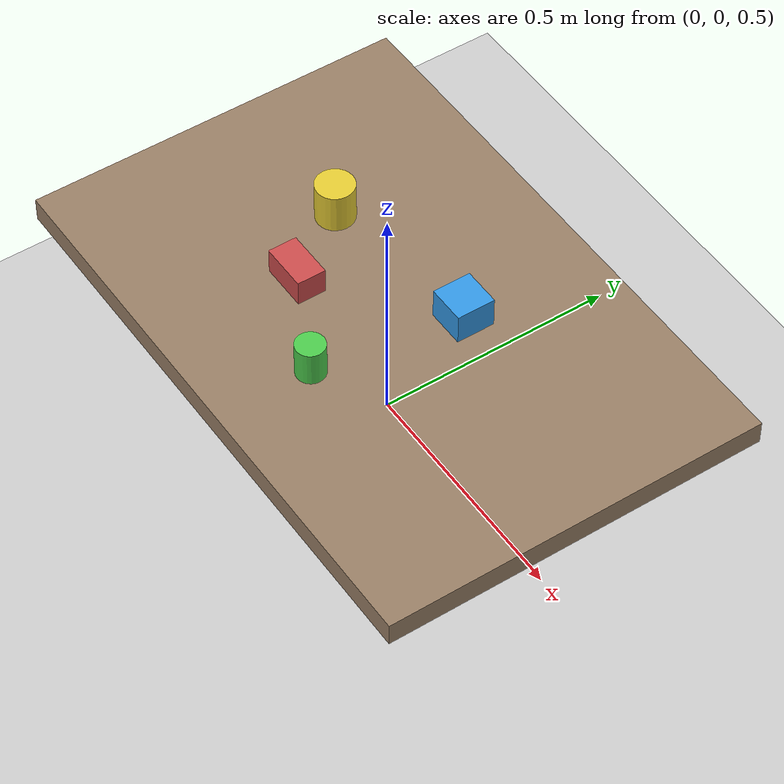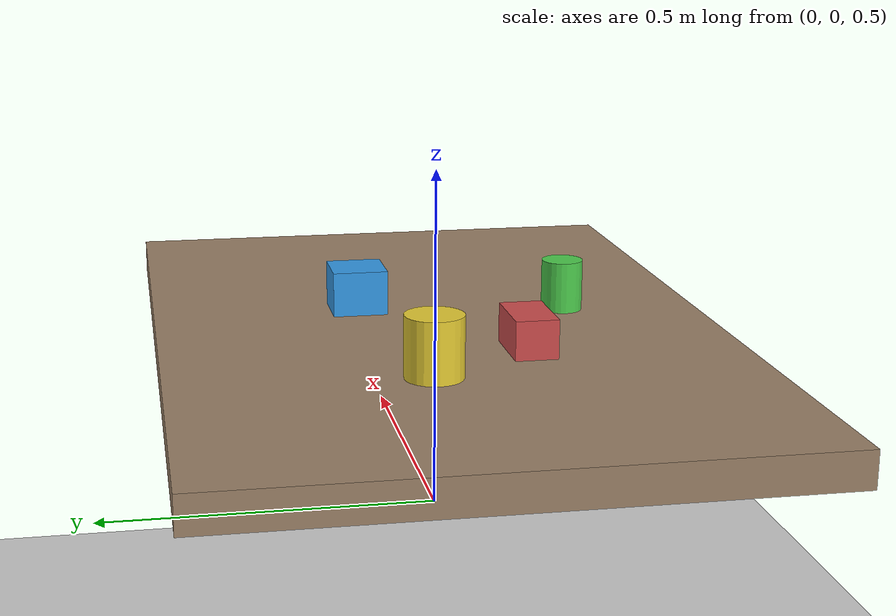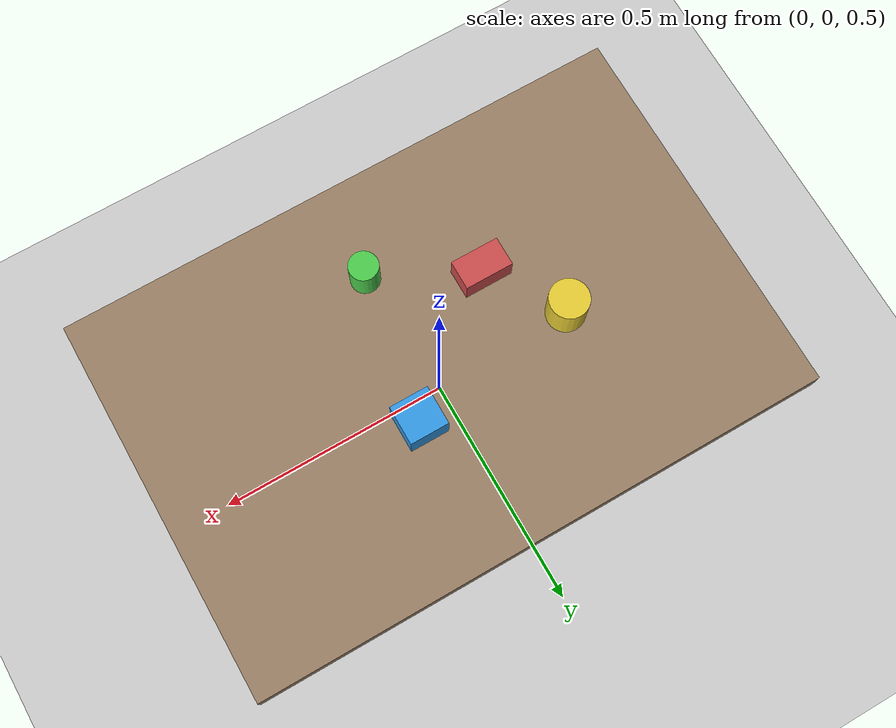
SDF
<sdf version="1.8">
 <world name="mesa_agarre_rgbd">
  <gravity>0 0 -9.81</gravity>
  <scene><ambient>0.4 0.4 0.4 1</ambient><background>0.7 0.7 0.7 1</background><shadows>true</shadows></scene>
  <include><uri>model://sun</uri></include>
  <include><uri>model://ground_plane</uri></include>
  <model name="mesa">
   <static>true</static>
   <pose>0 0 0.75 0 0 0</pose>
   <link name="mesa_link">
    <collision name="mesa_collision"><geometry><box><size>1.2 0.8 0.05</size></box></geometry></collision>
    <visual name="mesa_visual">
     <geometry><box><size>1.2 0.8 0.05</size></box></geometry>
     <material><ambient>0.6 0.5 0.4 1</ambient><diffuse>0.6 0.5 0.4 1</diffuse></material>
    </visual>
   </link>
  </model>
  <model name="obj_box_1">
   <static>false</static>
   <pose>0.10 0.10 0.80 0 0 0</pose>
   <link name="link">
    <inertial><mass>0.2</mass></inertial>
    <collision name="collision"><geometry><box><size>0.08 0.08 0.08</size></box></geometry></collision>
    <visual name="visual">
     <geometry><box><size>0.08 0.08 0.08</size></box></geometry>
     <material><diffuse>0.2 0.6 0.9 1</diffuse></material>
    </visual>
   </link>
  </model>
  <model name="obj_box_2">
   <static>false</static>
   <pose>-0.15 -0.10 0.80 0 0 0</pose>
   <link name="link">
    <inertial><mass>0.2</mass></inertial>
    <collision name="collision"><geometry><box><size>0.10 0.06 0.06</size></box></geometry></collision>
    <visual name="visual">
     <geometry><box><size>0.10 0.06 0.06</size></box></geometry>
     <material><diffuse>0.8 0.3 0.3 1</diffuse></material>
    </visual>
   </link>
  </model>
  <model name="obj_cyl_1">
   <static>false</static>
   <pose>0.05 -0.20 0.80 0 0 0</pose>
   <link name="link">
    <inertial><mass>0.15</mass></inertial>
    <collision name="collision">
     <geometry><cylinder><radius>0.03</radius><length>0.10</length></cylinder></geometry>
    </collision>
    <visual name="visual">
     <geometry><cylinder><radius>0.03</radius><length>0.10</length></cylinder></geometry>
     <material><diffuse>0.3 0.8 0.3 1</diffuse></material>
    </visual>
   </link>
  </model>
  <model name="obj_cyl_2">
   <static>false</static>
   <pose>-0.25 0.05 0.80 0 0 0</pose>
   <link name="link">
    <inertial><mass>0.15</mass></inertial>
    <collision name="collision">
     <geometry><cylinder><radius>0.04</radius><length>0.12</length></cylinder></geometry>
    </collision>
    <visual name="visual">
     <geometry><cylinder><radius>0.04</radius><length>0.12</length></cylinder></geometry>
     <material><diffuse>0.9 0.8 0.2 1</diffuse></material>
    </visual>
   </link>
  </model>
  <model name="rgbd_cam_1">
   <static>true</static>
   <pose>0.6 0 1.3 0 -1.0 -1.57</pose>
   <link name="link">
    <sensor name="rgbd_sensor_1" type="rgbd_camera">
     <update_rate>15.0</update_rate>
     <always_on>true</always_on>
     <visualize>true</visualize>
     <camera>
      <horizontal_fov>1.047</horizontal_fov>
      <image><width>640</width><height>480</height><format>R8G8B8</format></image>
      <clip><near>0.1</near><far>5.0</far></clip>
     </camera>
     <depth_camera>
      <image><width>640</width><height>480</height><format>FLOAT32</format></image>
      <clip><near>0.1</near><far>5.0</far></clip>
     </depth_camera>
    </sensor>
   </link>
  </model>
  <model name="rgbd_cam_2">
   <static>true</static>
   <pose>0 -1.2 0.9 0 -0.3 0</pose>
   <link name="link">
    <sensor name="rgbd_sensor_2" type="rgbd_camera">
     <update_rate>15.0</update_rate>
     <always_on>true</always_on>
     <visualize>true</visualize>
     <camera>
      <horizontal_fov>1.047</horizontal_fov>
      <image><width>640</width><height>480</height><format>R8G8B8</format></image>
      <clip><near>0.1</near><far>5.0</far></clip>
     </camera>
     <depth_camera>
      <image><width>640</width><height>480</height><format>FLOAT32</format></image>
      <clip><near>0.1</near><far>5.0</far></clip>
     </depth_camera>
    </sensor>
   </link>
  </model>
 </world>
</sdf>
